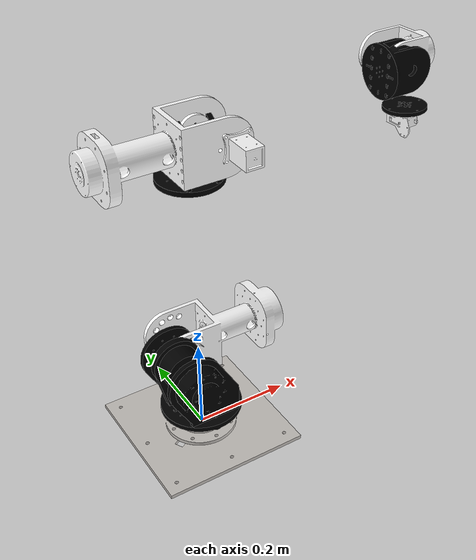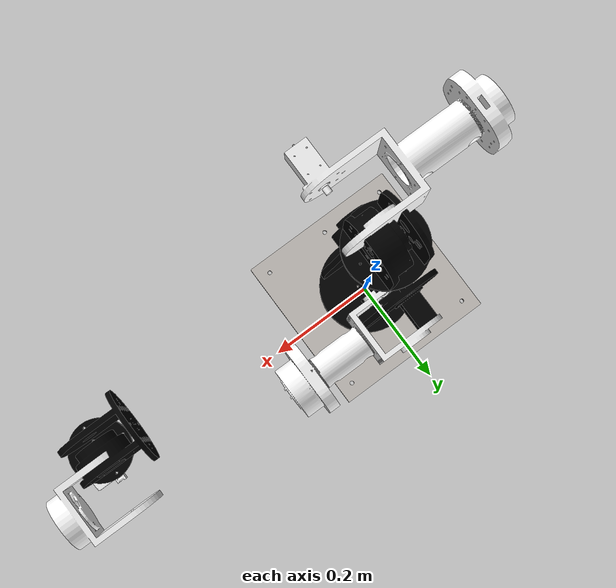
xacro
<?xml version="1.0"?>

<robot
name="link4_urdf" xmlns:xacro="http://ros.org/wiki/xacro">

<link name="world"/>

<joint name="base_joint" type="fixed">
<parent link="world"/>
<child link="base_link"/>
<origin rpy="0 0 0" xyz="0 0 0"/>
</joint>
<link
name="base_link">
<inertial>
<origin
xyz="0.00049737 0.00026123 0.0072038"
rpy="0 0 0" />
<mass
value="6.9112" />
<inertia
ixx="0.046617"
ixy="0.00010077"
ixz="5.1488E-08"
iyy="0.046482"
iyz="-1.4461E-07"
izz="0.092984" />
</inertial>
<visual>
<origin
xyz="0 0 0"
rpy="0 0 0" />
<geometry>
<mesh
filename="$(find urdf_desc)/meshes/base_link.STL" />
</geometry>
<material
name="">
<color
rgba="0.77647 0.75686 0.73725 1" />
</material>
</visual>
<collision>
<origin
xyz="0 0 0"
rpy="0 0 0" />
<geometry>
<mesh
filename="$(find urdf_desc)/meshes/base_link.STL" />
</geometry>
</collision>
</link>
<link
name="Link_1">
<inertial>
<origin
xyz="1.4551E-05 -0.0043711 0.069929"
rpy="0 0 0" />
<mass
value="1.4053" />
<inertia
ixx="0.0017174"
ixy="6.6784E-08"
ixz="3.5551E-07"
iyy="0.002626"
iyz="6.0024E-06"
izz="0.0017063" />
</inertial>
<visual>
<origin
xyz="0 0 0"
rpy="0 0 0" />
<geometry>
<mesh
filename="$(find urdf_desc)/meshes/Link_1.STL" />
</geometry>
<material
name="">
<color
rgba="0 0 0 1" />
</material>
</visual>
<collision>
<origin
xyz="0 0 0"
rpy="0 0 0" />
<geometry>
<mesh
filename="$(find urdf_desc)/meshes/Link_1.STL" />
</geometry>
</collision>
</link>
<joint
name="joint_1"
type="continuous">
<origin
xyz="0 0 0.05"
rpy="0 0 3.1416" />
<parent
link="base_link" />
<child
link="Link_1" />
<axis
xyz="0 0 -1" />
<limit
lower="0"
upper="3.14"
effort="0"
velocity="0" />
</joint>
<link
name="Link_2">
<inertial>
<origin
xyz="-6.5548E-05 0.21409 0.034291"
rpy="0 0 0" />
<mass
value="3.4329" />
<inertia
ixx="0.0091312"
ixy="-2.4753E-06"
ixz="8.4256E-07"
iyy="0.0057112"
iyz="5.0607E-06"
izz="0.0099035" />
</inertial>
<visual>
<origin
xyz="0 0 0"
rpy="0 0 0" />
<geometry>
<mesh
filename="$(find urdf_desc)/meshes/Link_2.STL" />
</geometry>
<material
name="">
<color
rgba="1 1 1 1" />
</material>
</visual>
<collision>
<origin
xyz="0 0 0"
rpy="0 0 0" />
<geometry>
<mesh
filename="$(find urdf_desc)/meshes/Link_2.STL" />
</geometry>
</collision>
</link>
<joint
name="joint_2"
type="revolute">
<origin
xyz="0 -0.02999999999948 0.107500000000395"
rpy="1.5707963267949 0 -3.14159265358979" />
<parent
link="Link_1" />
<child
link="Link_2" />
<axis
xyz="0 0 -1" />
<limit
lower="-1.9199"
upper="1.9199"
effort="0"
velocity="0" />
</joint>
<link
name="Link_3">
<inertial>
<origin
xyz="-2.1655E-05 0.0044003 0.0672"
rpy="0 0 0" />
<mass
value="1.3788" />
<inertia
ixx="0.0016215"
ixy="-9.275E-08"
ixz="2.8899E-07"
iyy="0.0025027"
iyz="-5.4475E-06"
izz="0.0016785" />
</inertial>
<visual>
<origin
xyz="0 0 0"
rpy="0 0 0" />
<geometry>
<mesh
filename="$(find urdf_desc)/meshes/Link_3.STL" />
</geometry>
<material
name="">
<color
rgba="0 0 0 1" />
</material>
</visual>
<collision>
<origin
xyz="0 0 0"
rpy="0 0 0" />
<geometry>
<mesh
filename="$(find urdf_desc)/meshes/Link_3.STL" />
</geometry>
</collision>
</link>
<joint
name="joint_3"
type="continuous">
<origin
xyz="0.000359289684152012 0.435033961918617 0.0294474762975983"
rpy="1.57079632680726 0 3.14159265358979" />
<parent
link="Link_2" />
<child
link="Link_3" />
<axis
xyz="0 0 -1" />
<limit
lower="0"
upper="3.14"
effort="0"
velocity="0" />
</joint>
<link
name="Link_4">
<inertial>
<origin
xyz="0.22054 0.00021752 -0.034312"
rpy="0 0 0" />
<mass
value="3.5515" />
<inertia
ixx="0.0043885"
ixy="2.6288E-06"
ixz="-3.6827E-06"
iyy="0.0083524"
iyz="-3.8569E-06"
izz="0.0091315" />
</inertial>
<visual>
<origin
xyz="0 0 0"
rpy="0 0 0" />
<geometry>
<mesh
filename="$(find urdf_desc)/meshes/Link_4.STL" />
</geometry>
<material
name="">
<color
rgba="1 1 1 1" />
</material>
</visual>
<collision>
<origin
xyz="0 0 0"
rpy="0 0 0" />
<geometry>
<mesh
filename="$(find urdf_desc)/meshes/Link_4.STL" />
</geometry>
</collision>
</link>
<joint
name="joint_4"
type="revolute">
<origin
xyz="0 0.0299999999999995 0.102500000000001"
rpy="1.5707963267949 0 3.14159265358979" />
<parent
link="Link_3" />
<child
link="Link_4" />
<axis
xyz="0 0 1" />
<limit
lower="-0.2618"
upper="3.4907"
effort="0"
velocity="0" />
</joint>
<link
name="Link_5">
<inertial>
<origin
xyz="0.0058409 -0.0002627 0.054755"
rpy="0 0 0" />
<mass
value="1.4559" />
<inertia
ixx="0.0013388"
ixy="-2.389E-05"
ixz="-1.7038E-06"
iyy="0.00084376"
iyz="-2.3795E-07"
izz="0.0009966" />
</inertial>
<visual>
<origin
xyz="0 0 0"
rpy="0 0 0" />
<geometry>
<mesh
filename="$(find urdf_desc)/meshes/Link_5.STL" />
</geometry>
<material
name="">
<color
rgba="0 0 0 1" />
</material>
</visual>
<collision>
<origin
xyz="0 0 0"
rpy="0 0 0" />
<geometry>
<mesh
filename="$(find urdf_desc)/meshes/Link_5.STL" />
</geometry>
</collision>
</link>
<joint
name="joint_5"
type="continuous">
<origin
xyz="0.419299903678905 0 -0.0294999999999992"
rpy="0 1.5707963267949 0" />
<parent
link="Link_4" />
<child
link="Link_5" />
<axis
xyz="0 0 -1" />
<limit
lower="0"
upper="3.14"
effort="0"
velocity="0" />
</joint>
<link
name="link_6">
<inertial>
<origin
xyz="0.00011175 -0.056394 -0.023876"
rpy="0 0 0" />
<mass
value="1.4077" />
<inertia
ixx="0.00078211"
ixy="-9.9306E-07"
ixz="3.1036E-06"
iyy="0.0010474"
iyz="1.657E-06"
izz="0.00099212" />
</inertial>
<visual>
<origin
xyz="0 0 0"
rpy="0 0 0" />
<geometry>
<mesh
filename="$(find urdf_desc)/meshes/link_6.STL" />
</geometry>
<material
name="">
<color
rgba="1 1 1 1" />
</material>
</visual>
<collision>
<origin
xyz="0 0 0"
rpy="0 0 0" />
<geometry>
<mesh
filename="$(find urdf_desc)/meshes/link_6.STL" />
</geometry>
</collision>
</link>
<joint
name="joint_6"
type="revolute">
<origin
xyz="0.0239691789943203 -0.00121612576549357 0.0675000000000011"
rpy="0.0506935943659278 1.5707963267949 0" />
<parent
link="Link_5" />
<child
link="link_6" />
<axis
xyz="0 0 1" />
<limit
lower="-3.14"
upper="0"
effort="0"
velocity="0" />
</joint>
<link
name="Link_7">
<inertial>
<origin
xyz="8.2711E-06 3.9121E-07 0.0087604"
rpy="0 0 0" />
<mass
value="0.18439" />
<inertia
ixx="8.0523E-05"
ixy="-8.9234E-11"
ixz="-4.712E-11"
iyy="8.0525E-05"
iyz="-2.2287E-12"
izz="0.00015908" />
</inertial>
<visual>
<origin
xyz="0 0 0"
rpy="0 0 0" />
<geometry>
<mesh
filename="$(find urdf_desc)/meshes/Link_7.STL" />
</geometry>
<material
name="">
<color
rgba="0 0 0 1" />
</material>
</visual>
<collision>
<origin
xyz="0 0 0"
rpy="0 0 0" />
<geometry>
<mesh
filename="$(find urdf_desc)/meshes/Link_7.STL" />
</geometry>
</collision>
</link>
<joint
name="joint_7"
type="continuous">
<origin
xyz="0 -0.0909999036788988 -0.0244999999999991"
rpy="-1.5707963267949 0 3.14159265358979" />
<parent
link="link_6" />
<child
link="Link_7" />
<axis
xyz="0 0 -1" />
<limit
lower="0"
upper="3.14"
effort="0"
velocity="0" />
</joint>
<link
name="endeffector">
<inertial>
<origin
xyz="-0.0198 -0.019334 0.047383"
rpy="0 0 0" />
<mass
value="0.10291" />
<inertia
ixx="1.41E-05"
ixy="-4.3343E-07"
ixz="-9.812E-08"
iyy="2.056E-05"
iyz="-4.6453E-09"
izz="2.527E-05" />
</inertial>
<visual>
<origin
xyz="0 0 0"
rpy="0 0 0" />
<geometry>
<mesh
filename="$(find urdf_desc)/meshes/endeffector.STL" />
</geometry>
<material
name="">
<color
rgba="1 1 1 1" />
</material>
</visual>
<collision>
<origin
xyz="0 0 0"
rpy="0 0 0" />
<geometry>
<mesh
filename="$(find urdf_desc)/meshes/endeffector.STL" />
</geometry>
</collision>
</link>
<joint
name="endeffector"
type="fixed">
<origin
xyz="0 0 0"
rpy="0 0 0" />
<parent
link="Link_7" />
<child
link="endeffector" />
<axis
xyz="0 0 0" />
</joint>
<ros2_control name="GazeboSystem" type="system">
<hardware>
<plugin>gazebo_ros2_control/GazeboSystem</plugin>
</hardware>
<joint name="joint_1">
<command_interface name="position">
<param name="min">0</param>
<param name="max">3.15</param>
</command_interface>
<command_interface name="velocity">
<param name="min">-1</param>
<param name="max">1</param>
</command_interface>
<command_interface name="effort">
<param name="min">-100</param>
<param name="max">100</param>
</command_interface>
<state_interface name="position"/>
<state_interface name="velocity"/>
<state_interface name="effort"/>
</joint>

<joint name="joint_2">
<command_interface name="position">
<param name="min">${-1.9199}</param>
<param name="max">${1.9199}</param>
</command_interface>
<command_interface name="velocity">
<param name="min">-0.1</param>
<param name="max">0.1</param>
</command_interface>
<command_interface name="effort">
<param name="min">-100</param>
<param name="max">100</param>
</command_interface>
<state_interface name="position"/>
<state_interface name="velocity"/>
<state_interface name="effort"/>
</joint>

<joint name="joint_3">
<command_interface name="position">
<param name="min">${-1.9199}</param>
<param name="max">${1.9199}</param>
</command_interface>
<command_interface name="velocity">
<param name="min">-1</param>
<param name="max">1</param>
</command_interface>
<command_interface name="effort">
<param name="min">-100</param>
<param name="max">100</param>
</command_interface>
<state_interface name="position"/>
<state_interface name="velocity"/>
<state_interface name="effort"/>
</joint>

<joint name="joint_4">
<command_interface name="position">
<param name="min">${-1.9199}</param>
<param name="max">${1.9199}</param>
</command_interface>
<command_interface name="velocity">
<param name="min">-1</param>
<param name="max">1</param>
</command_interface>
<command_interface name="effort">
<param name="min">-100</param>
<param name="max">100</param>
</command_interface>
<state_interface name="position"/>
<state_interface name="velocity"/>
<state_interface name="effort"/>
</joint>

<joint name="joint_5">
<command_interface name="position">
<param name="min">${-1.9199}</param>
<param name="max">${1.9199}</param>
</command_interface>
<command_interface name="velocity">
<param name="min">-3.15</param>
<param name="max">3.15</param>
</command_interface>
<command_interface name="effort">
<param name="min">-100</param>
<param name="max">100</param>
</command_interface>
<state_interface name="position"/>
<state_interface name="velocity"/>
<state_interface name="effort"/>
</joint>

<joint name="joint_6">
<command_interface name="position">
<param name="min">${-1.9199}</param>
<param name="max">${1.9199}</param>
</command_interface>
<command_interface name="velocity">
<param name="min">-3.15</param>
<param name="max">3.15</param>
</command_interface>
<command_interface name="effort">
<param name="min">-100</param>
<param name="max">100</param>
</command_interface>
<state_interface name="position"/>
<state_interface name="velocity"/>
<state_interface name="effort"/>
</joint>

<joint name="joint_7">
<command_interface name="position">
<param name="min">${-1.9199}</param>
<param name="max">${1.9199}</param>
</command_interface>
<command_interface name="velocity">
<param name="min">-3.15</param>
<param name="max">3.15</param>
</command_interface>
<command_interface name="effort">
<param name="min">-100</param>
<param name="max">100</param>
</command_interface>
<state_interface name="position"/>
<state_interface name="velocity"/>
<state_interface name="effort"/>
</joint>

</ros2_control>

<gazebo>
<plugin filename="libgazebo_ros2_control.so" name="gazebo_ros2_control">
<parameters>$(find gazebo_urdf)/config/gazebo_controllers.yaml</parameters>
</plugin>
</gazebo>

</robot>
